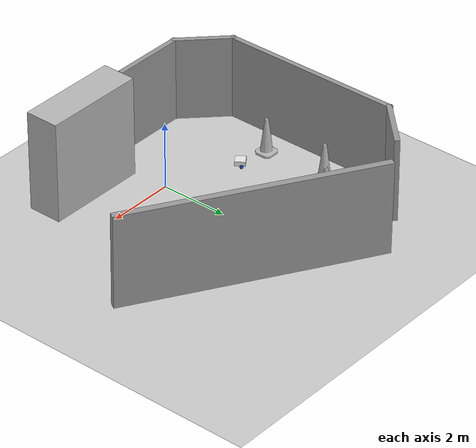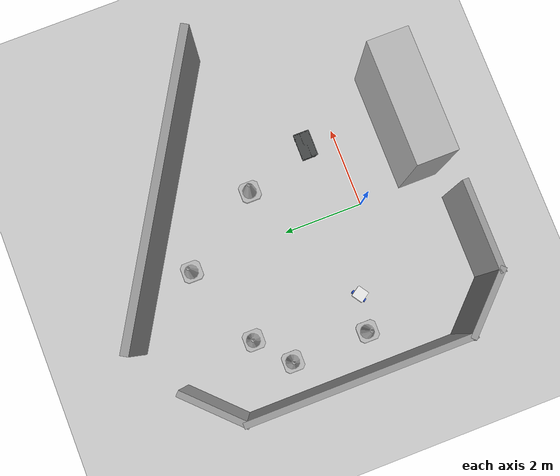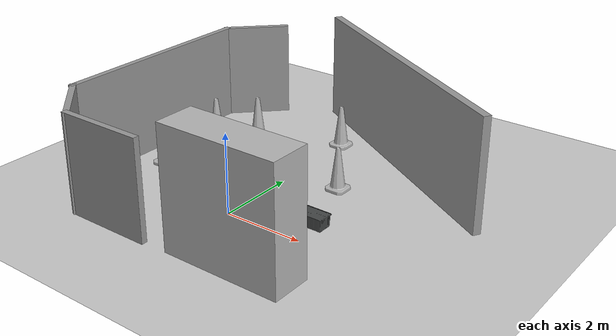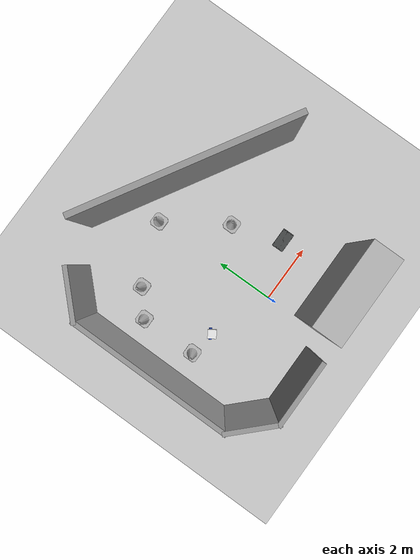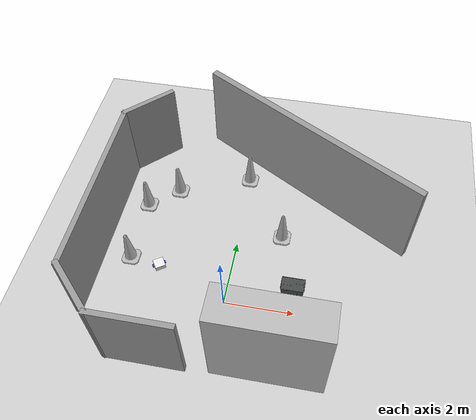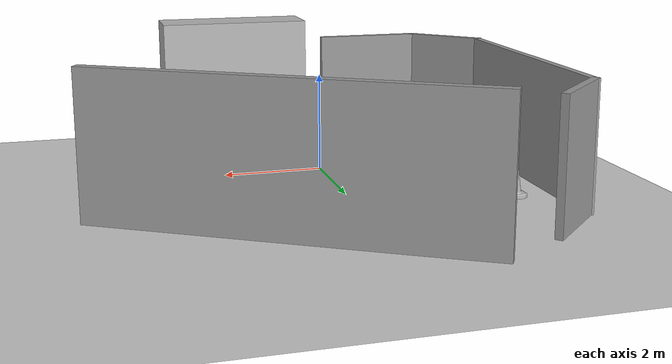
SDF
<sdf version="1.7">
 <world name="default">
  <light name="sun" type="directional">
   <pose>0 0 10 0 -0 0</pose>
   <diffuse>0.8 0.8 0.8 1</diffuse>
   <specular>0.2 0.2 0.2 1</specular>
   <attenuation>
    <range>1000</range>
    <constant>0.9</constant>
    <linear>0.01</linear>
    <quadratic>0.001</quadratic>
   </attenuation>
   <direction>-0.5 0.1 -0.9</direction>
   <spot><inner_angle>0</inner_angle><outer_angle>0</outer_angle><falloff>0</falloff></spot>
  </light>
  <model name="ground_plane">
   <static>1</static>
   <link name="link">
    <collision name="collision">
     <geometry><plane><normal>0 0 1</normal><size>100 100</size></plane></geometry>
     <surface><friction><ode><mu>100</mu><mu2>50</mu2></ode></friction></surface>
    </collision>
    <visual name="visual">
     <cast_shadows>0</cast_shadows>
     <geometry><plane><normal>0 0 1</normal><size>100 100</size></plane></geometry>
     <material>
      <script><uri>file://media/materials/scripts/gazebo.material</uri><name>Gazebo/Grey</name></script>
     </material>
    </visual>
   </link>
  </model>
  <gravity>0 0 -9.8</gravity>
  <magnetic_field>6e-06 2.3e-05 -4.2e-05</magnetic_field>
  <atmosphere type="adiabatic"/>
  <physics type="ode">
   <max_step_size>0.001</max_step_size>
   <real_time_factor>1</real_time_factor>
   <real_time_update_rate>1000</real_time_update_rate>
  </physics>
  <scene><ambient>0.4 0.4 0.4 1</ambient><background>0.7 0.7 0.7 1</background><shadows>1</shadows></scene>
  <audio><device>default</device></audio>
  <spherical_coordinates>
   <surface_model>EARTH_WGS84</surface_model>
   <latitude_deg>0</latitude_deg>
   <longitude_deg>0</longitude_deg>
   <elevation>0</elevation>
   <heading_deg>0</heading_deg>
  </spherical_coordinates>
  <model name="my_bot">
   <link name="base_link">
    <inertial>
     <pose>0.065 0 0.0625 0 -0 0</pose>
     <mass>0.6</mass>
     <inertia>
      <ixx>0.00525625</ixx>
      <ixy>0</ixy>
      <ixz>0.0005625</ixz>
      <iyy>0.00593125</iyy>
      <iyz>0</iyz>
      <izz>0.008275</izz>
     </inertia>
    </inertial>
    <collision name="base_link_fixed_joint_lump__chassis_collision">
     <pose>0.05 0 0.075 0 -0 0</pose>
     <geometry><box><size>0.3 0.3 0.15</size></box></geometry>
    </collision>
    <collision name="base_link_fixed_joint_lump__caster_wheel_collision_1">
     <pose>0.14 0 0 0 -0 0</pose>
     <geometry><sphere><radius>0.05</radius></sphere></geometry>
     <surface><friction><ode><mu>0.001</mu><mu2>0.001</mu2></ode></friction></surface>
    </collision>
    <visual name="base_link_fixed_joint_lump__chassis_visual">
     <pose>0.05 0 0.075 0 -0 0</pose>
     <geometry><box><size>0.3 0.3 0.15</size></box></geometry>
     <material>
      <script><name>Gazebo/White</name><uri>file://media/materials/scripts/gazebo.material</uri></script>
     </material>
    </visual>
    <visual name="base_link_fixed_joint_lump__caster_wheel_visual_1">
     <pose>0.14 0 0 0 -0 0</pose>
     <geometry><sphere><radius>0.05</radius></sphere></geometry>
     <material>
      <script><name>Gazebo/Black</name><uri>file://media/materials/scripts/gazebo.material</uri></script>
     </material>
    </visual>
   </link>
   <joint name="left_wheel_joint" type="revolute">
    <pose relative_to="base_link">0 0.175 0 -1.5708 0 0</pose>
    <parent>base_link</parent>
    <child>left_wheel</child>
    <axis>
     <xyz>0 0 1</xyz>
     <limit><lower>-1e+16</lower><upper>1e+16</upper></limit>
     <dynamics><spring_reference>0</spring_reference><spring_stiffness>0</spring_stiffness></dynamics>
    </axis>
   </joint>
   <link name="left_wheel">
    <pose relative_to="left_wheel_joint">0 0 0 0 -0 0</pose>
    <inertial>
     <mass>0.1</mass>
     <inertia>
      <ixx>7.58333e-05</ixx>
      <ixy>0</ixy>
      <ixz>0</ixz>
      <iyy>7.58333e-05</iyy>
      <iyz>0</iyz>
      <izz>0.000125</izz>
     </inertia>
    </inertial>
    <collision name="left_wheel_collision">
     <geometry><cylinder><length>0.04</length><radius>0.05</radius></cylinder></geometry>
    </collision>
    <visual name="left_wheel_visual">
     <geometry><cylinder><length>0.04</length><radius>0.05</radius></cylinder></geometry>
     <material>
      <script><name>Gazebo/Blue</name><uri>file://media/materials/scripts/gazebo.material</uri></script>
     </material>
    </visual>
   </link>
   <joint name="right_wheel_joint" type="revolute">
    <pose relative_to="base_link">0 -0.175 0 1.5708 -0 0</pose>
    <parent>base_link</parent>
    <child>right_wheel</child>
    <axis>
     <xyz>0 0 -1</xyz>
     <limit><lower>-1e+16</lower><upper>1e+16</upper></limit>
     <dynamics><spring_reference>0</spring_reference><spring_stiffness>0</spring_stiffness></dynamics>
    </axis>
   </joint>
   <link name="right_wheel">
    <pose relative_to="right_wheel_joint">0 0 0 0 -0 0</pose>
    <inertial>
     <mass>0.1</mass>
     <inertia>
      <ixx>7.58333e-05</ixx>
      <ixy>0</ixy>
      <ixz>0</ixz>
      <iyy>7.58333e-05</iyy>
      <iyz>0</iyz>
      <izz>0.000125</izz>
     </inertia>
    </inertial>
    <collision name="right_wheel_collision">
     <geometry><cylinder><length>0.04</length><radius>0.05</radius></cylinder></geometry>
    </collision>
    <visual name="right_wheel_visual">
     <geometry><cylinder><length>0.04</length><radius>0.05</radius></cylinder></geometry>
     <material>
      <script><name>Gazebo/Blue</name><uri>file://media/materials/scripts/gazebo.material</uri></script>
     </material>
    </visual>
   </link>
   <static>0</static>
   <plugin name="diff_drive" filename="libgazebo_ros_diff_drive.so">
    <left_joint>left_wheel_joint</left_joint>
    <right_joint>right_wheel_joint</right_joint>
    <wheel_separation>0.35</wheel_separation>
    <wheel_diameter>0.1</wheel_diameter>
    <max_wheel_torque>200</max_wheel_torque>
    <max_wheel_acceleration>10.0</max_wheel_acceleration>
    <odometry_frame>odom</odometry_frame>
    <robot_base_frame>base_link</robot_base_frame>
    <publish_odom>1</publish_odom>
    <publish_odom_tf>1</publish_odom_tf>
    <publish_wheel_tf>1</publish_wheel_tf>
   </plugin>
   <pose>-2.11623 0.885038 0.05 -0 1.5e-05 -0.978156</pose>
  </model>
  <model name="brick_box_3x1x3">
   <static>1</static>
   <link name="chassis">
    <pose>0 0 1.5 0 -0 0</pose>
    <collision name="collision"><geometry><box><size>3 1 3</size></box></geometry></collision>
    <visual name="visual">
     <geometry><mesh><uri>model://brick_box_3x1x3/meshes/simple_box.dae</uri><scale>3 1 3</scale></mesh></geometry>
     <material>
      <script>
       <uri>model://brick_box_3x1x3/materials/scripts</uri>
       <uri>model://brick_box_3x1x3/materials/textures</uri>
       <name>BrickBox/Diffuse</name>
      </script>
     </material>
    </visual>
   </link>
   <pose>1.53777 -1.5471 0 0 -0 0</pose>
  </model>
  <model name="grey_wall">
   <static>1</static>
   <link name="link">
    <pose>0 0 1.4 0 -0 0</pose>
    <collision name="collision"><geometry><box><size>7.5 0.2 2.8</size></box></geometry></collision>
    <visual name="visual">
     <cast_shadows>0</cast_shadows>
     <geometry><box><size>7.5 0.2 2.8</size></box></geometry>
     <material>
      <script>
       <uri>model://grey_wall/materials/scripts</uri>
       <uri>model://grey_wall/materials/textures</uri>
       <name>vrc/grey_wall</name>
      </script>
     </material>
    </visual>
   </link>
   <pose>1.69456 4.44031 0 -0.008905 -0.005253 -0.532901</pose>
  </model>
  <model name="Construction Cone">
   <link name="link">
    <collision name="collision">
     <geometry>
      <mesh><scale>10 10 10</scale><uri>model://construction_cone/meshes/construction_cone.dae</uri></mesh>
     </geometry>
    </collision>
    <visual name="visual">
     <geometry>
      <mesh><scale>10 10 10</scale><uri>model://construction_cone/meshes/construction_cone.dae</uri></mesh>
     </geometry>
    </visual>
    <inertial>
     <inertia><ixx>1</ixx><ixy>0</ixy><ixz>0</ixz><iyy>1</iyy><iyz>0</iyz><izz>1</izz></inertia>
     <mass>1</mass>
    </inertial>
   </link>
   <pose>-2.19901 3.68904 -0 0 -0 0</pose>
  </model>
  <model name="Construction Cone_clone">
   <link name="link">
    <collision name="collision">
     <geometry>
      <mesh><scale>10 10 10</scale><uri>model://construction_cone/meshes/construction_cone.dae</uri></mesh>
     </geometry>
    </collision>
    <visual name="visual">
     <geometry>
      <mesh><scale>10 10 10</scale><uri>model://construction_cone/meshes/construction_cone.dae</uri></mesh>
     </geometry>
    </visual>
    <inertial>
     <inertia><ixx>1</ixx><ixy>0</ixy><ixz>0</ixz><iyy>1</iyy><iyz>0</iyz><izz>1</izz></inertia>
     <mass>1</mass>
    </inertial>
   </link>
   <pose>-3 1 -1e-05 -1e-06 0 0</pose>
  </model>
  <model name="Construction Cone_clone_0">
   <link name="link">
    <collision name="collision">
     <geometry>
      <mesh><scale>10 10 10</scale><uri>model://construction_cone/meshes/construction_cone.dae</uri></mesh>
     </geometry>
    </collision>
    <visual name="visual">
     <geometry>
      <mesh><scale>10 10 10</scale><uri>model://construction_cone/meshes/construction_cone.dae</uri></mesh>
     </geometry>
    </visual>
    <inertial>
     <inertia><ixx>1</ixx><ixy>0</ixy><ixz>0</ixz><iyy>1</iyy><iyz>0</iyz><izz>1</izz></inertia>
     <mass>1</mass>
    </inertial>
   </link>
   <pose>-3.03021 2.9773 -6e-06 -4e-06 0 0</pose>
  </model>
  <model name="Construction Cone_clone_1">
   <link name="link">
    <collision name="collision">
     <geometry>
      <mesh><scale>10 10 10</scale><uri>model://construction_cone/meshes/construction_cone.dae</uri></mesh>
     </geometry>
    </collision>
    <visual name="visual">
     <geometry>
      <mesh><scale>10 10 10</scale><uri>model://construction_cone/meshes/construction_cone.dae</uri></mesh>
     </geometry>
    </visual>
    <inertial>
     <inertia><ixx>1</ixx><ixy>0</ixy><ixz>0</ixz><iyy>1</iyy><iyz>0</iyz><izz>1</izz></inertia>
     <mass>1</mass>
    </inertial>
   </link>
   <pose>1.28384 2.46273 -3e-06 -3e-06 -1e-06 -0</pose>
  </model>
  <model name="Construction Cone_clone_2">
   <link name="link">
    <collision name="collision">
     <geometry>
      <mesh><scale>10 10 10</scale><uri>model://construction_cone/meshes/construction_cone.dae</uri></mesh>
     </geometry>
    </collision>
    <visual name="visual">
     <geometry>
      <mesh><scale>10 10 10</scale><uri>model://construction_cone/meshes/construction_cone.dae</uri></mesh>
     </geometry>
    </visual>
    <inertial>
     <inertia><ixx>1</ixx><ixy>0</ixy><ixz>0</ixz><iyy>1</iyy><iyz>0</iyz><izz>1</izz></inertia>
     <mass>1</mass>
    </inertial>
   </link>
   <pose>-0.075341 4.51901 -0 0 -1e-06 0</pose>
  </model>
  <model name="grey_tote">
   <link name="link">
    <inertial>
     <pose>0 0 0.14155 0 -0 0</pose>
     <mass>3.53802</mass>
     <inertia>
      <ixx>0.0688358</ixx>
      <ixy>0</ixy>
      <ixz>0</ixz>
      <iyy>0.139596</iyy>
      <iyz>0</iyz>
      <izz>0.155909</izz>
     </inertia>
    </inertial>
    <collision name="lid">
     <pose>0 0 0.28958 0 -0 0</pose>
     <geometry><box><size>0.67768 0.41298 0.01588</size></box></geometry>
    </collision>
    <collision name="lid_lip_1">
     <pose>0 0.20063 0.3048 0 -0 0</pose>
     <geometry><box><size>0.65068 0.0105 0.0127</size></box></geometry>
    </collision>
    <collision name="lid_lip_2">
     <pose>0 -0.20063 0.3048 0 -0 0</pose>
     <geometry><box><size>0.65068 0.0105 0.0127</size></box></geometry>
    </collision>
    <collision name="lid_lip_3">
     <pose>0.32585 0 0.3048 0 -0 0</pose>
     <geometry><box><size>0.02602 0.31202 0.0127</size></box></geometry>
    </collision>
    <collision name="lid_lip_4">
     <pose>-0.32585 0 0.3048 0 -0 0</pose>
     <geometry><box><size>0.02602 0.31202 0.0127</size></box></geometry>
    </collision>
    <collision name="side_wall_1">
     <pose>0 -0.18 0.14155 0.061147 -0 0</pose>
     <geometry><box><size>0.58404 0.02602 0.283099</size></box></geometry>
    </collision>
    <collision name="side_wall_2">
     <pose>0 0.18 0.14155 -0.061147 0 0</pose>
     <geometry><box><size>0.58404 0.02602 0.283099</size></box></geometry>
    </collision>
    <collision name="side_wall_3">
     <pose>0.305 0 0.14155 0 0.061147 0</pose>
     <geometry><box><size>0.02602 0.33046 0.283099</size></box></geometry>
    </collision>
    <collision name="side_wall_4">
     <pose>-0.305 0 0.14155 0 -0.061147 0</pose>
     <geometry><box><size>0.02602 0.33046 0.283099</size></box></geometry>
    </collision>
    <collision name="bottom">
     <pose>0 0 0.01 0 -0 0</pose>
     <geometry><box><size>0.58404 0.33046 0.02</size></box></geometry>
    </collision>
    <collision name="corner_1">
     <pose>0.30202 -0.175 0.14155 0.061147 0.061147 -0</pose>
     <geometry><cylinder><radius>0.01268</radius><length>0.283099</length></cylinder></geometry>
    </collision>
    <collision name="corner_2">
     <pose>-0.30202 -0.175 0.14155 0.061147 -0.061147 0</pose>
     <geometry><cylinder><radius>0.01268</radius><length>0.283099</length></cylinder></geometry>
    </collision>
    <collision name="corner_3">
     <pose>-0.30202 0.175 0.14155 -0.061147 -0.061147 -0</pose>
     <geometry><cylinder><radius>0.01268</radius><length>0.283099</length></cylinder></geometry>
    </collision>
    <collision name="corner_4">
     <pose>0.30202 0.175 0.14155 -0.061147 0.061147 0</pose>
     <geometry><cylinder><radius>0.01268</radius><length>0.283099</length></cylinder></geometry>
    </collision>
    <visual name="visual"><geometry><mesh><uri>model://grey_tote/meshes/tote.dae</uri></mesh></geometry></visual>
   </link>
   <pose>1.84543 0.761743 0.000566 0 -0 0</pose>
  </model>
  <model name="1st_wall_gazebo">
   <pose>-1.98872 1.75637 0 0 -0 0</pose>
   <link name="Wall_0">
    <collision name="Wall_0_Collision">
     <geometry><box><size>2.25 0.15 2.5</size></box></geometry>
     <pose>0 0 1.25 0 -0 0</pose>
    </collision>
    <visual name="Wall_0_Visual">
     <pose>0 0 1.25 0 -0 0</pose>
     <geometry><box><size>2.25 0.15 2.5</size></box></geometry>
     <material>
      <script><uri>file://media/materials/scripts/gazebo.material</uri><name>Gazebo/Grey</name></script>
      <ambient>1 1 1 1</ambient>
     </material>
     <meta><layer>0</layer></meta>
    </visual>
    <pose>0.298719 -3.80637 0 0 -0 3.14159</pose>
   </link>
   <link name="Wall_1">
    <collision name="Wall_1_Collision">
     <geometry><box><size>1.75 0.15 2.5</size></box></geometry>
     <pose>0 0 1.25 0 -0 0</pose>
    </collision>
    <visual name="Wall_1_Visual">
     <pose>0 0 1.25 0 -0 0</pose>
     <geometry><box><size>1.75 0.15 2.5</size></box></geometry>
     <material>
      <script><uri>file://media/materials/scripts/gazebo.material</uri><name>Gazebo/Grey</name></script>
      <ambient>1 1 1 1</ambient>
     </material>
     <meta><layer>0</layer></meta>
    </visual>
    <pose>-1.31697 -3.24069 0 0 -0 2.35619</pose>
   </link>
   <link name="Wall_2">
    <collision name="Wall_2_Collision">
     <geometry><box><size>5.5 0.15 2.5</size></box></geometry>
     <pose>0 0 1.25 0 -0 0</pose>
    </collision>
    <visual name="Wall_2_Visual">
     <pose>0 0 1.25 0 -0 0</pose>
     <geometry><box><size>5.5 0.15 2.5</size></box></geometry>
     <material>
      <script><uri>file://media/materials/scripts/gazebo.material</uri><name>Gazebo/Grey</name></script>
      <ambient>1 1 1 1</ambient>
     </material>
     <meta><layer>0</layer></meta>
    </visual>
    <pose>-1.88265 0 0 0 -0 1.5708</pose>
   </link>
   <link name="Wall_3">
    <collision name="Wall_3_Collision">
     <geometry><box><size>1.75 0.15 2.5</size></box></geometry>
     <pose>0 0 1.25 0 -0 0</pose>
    </collision>
    <visual name="Wall_3_Visual">
     <pose>0 0 1.25 0 -0 0</pose>
     <geometry><box><size>1.75 0.15 2.5</size></box></geometry>
     <material>
      <script><uri>file://media/materials/scripts/gazebo.material</uri><name>Gazebo/Grey</name></script>
      <ambient>1 1 1 1</ambient>
     </material>
     <meta><layer>0</layer></meta>
    </visual>
    <pose>-1.31697 3.24069 0 0 -0 0.785398</pose>
   </link>
   <static>1</static>
  </model>
 </world>
</sdf>
